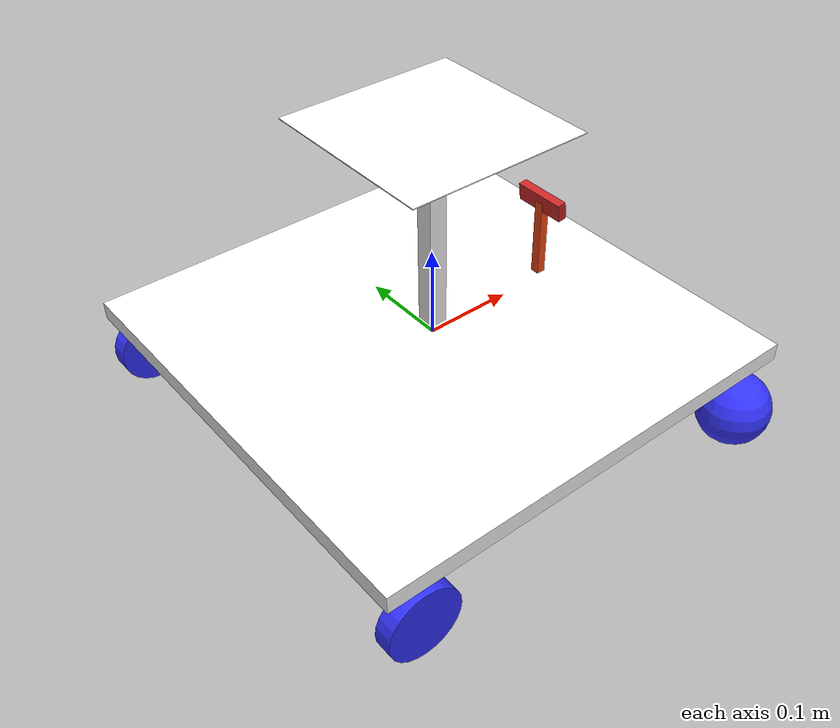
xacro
<?xml version="1.0"?>
<robot xmlns:xacro="http://www.ros.org/wiki/xacro"  name="robot">

    <xacro:include filename="robot_core.xacro" />

    <xacro:include filename="gazebo_control.xacro"/>

    <!--xacro:include filename="camera.xacro"/-->
    <xacro:include filename="depth_camera.xacro"/>

</robot>

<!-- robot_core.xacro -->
<robot xmlns:xacro="http://www.ros.org/wiki/xacro">
   <xacro:include filename="inertial_macros.xacro"/>

    <material name="white">
        <color rgba="1 1 1 1"/>
    </material>

    <material name="orange">
        <color rgba="1 0.3 0.1 1"/>
    </material>

    <material name="blue">
        <color rgba="0.2 0.2 1 1"/>
    </material>

    <material name="black">
        <color rgba="0 0 0 1"/>
    </material>

    <!-- BASE LINK -->

    <link name="base_link">

    </link>

    <!-- CHASSIS LINK -->

    <joint name="chassis_joint" type="fixed">
        <parent link="base_link"/>
        <child link="chassis"/>
        <origin xyz="-0.21 0 0"/>
    </joint>

    <link name="chassis">
        <visual>
            <origin xyz="0.21 0 0"/>
            <geometry>
                <box size="0.5 0.5 0.02"/>
            </geometry>
            <material name="white"/>
        </visual>
        <collision>
            <origin xyz="0.21 0 0"/>
            <geometry>
                <box size="0.5 0.5 0.02"/>
            </geometry>
        </collision>
        <xacro:inertial_box mass="0.5" x="0.5" y="0.5" z="0.02">
            <origin xyz="0.21 0 0.01" rpy="0 0 0"/>
        </xacro:inertial_box>
    </link>
    <gazebo reference="chassis">
       <material>Gazebo/White</material>
    </gazebo>

     <!-- ROBOT BASE LINK -->

    <joint name="base_joint" type="fixed">
        <parent link="base_link"/>
        <child link="base"/>
        <origin xyz="0 0 0.2"/>
    </joint>

    <link name="base">
        <visual>
            <origin xyz="0 0 -0.1"/>
            <geometry>
                <box size="0.02 0.02 0.2"/>
            </geometry>
            <material name="white"/>
        </visual>
        <collision>
            <origin xyz="0 0 -0.1"/>
            <geometry>
                <box size="0.02 0.02 0.2"/>
            </geometry>
        </collision>
        <xacro:inertial_box mass="0.1" x="0.02" y="0.02" z="0.2">
            <origin xyz="0 0 0.1" rpy="0 0 0"/>
        </xacro:inertial_box>
    </link>
    <gazebo reference="base">
       <material>Gazebo/White</material>
    </gazebo>

    <!-- ROBOT ROLL LINK -->

    <joint name="roll_joint" type="revolute">
        <parent link="base"/>
        <child link="roll"/>
        <origin xyz="0 0 0"/>
        <limit lower="-1" upper="1" effort="10" velocity="3"/>
        <axis xyz="1 0 0"/>
    </joint>

    <link name="roll">
        <visual>
            <origin xyz="0 0 0"/>
            <geometry>
                <box size="0 0 0"/>
            </geometry>
            <material name="white"/>
        </visual>
        <collision>
            <origin xyz="0 0 0"/>
            <geometry>
                <box size="0 0 0"/>
            </geometry>
        </collision>
        <xacro:inertial_box mass="0.09" x="0.05" y="0.02" z="0.02">
            <origin xyz="0.05 0 0" rpy="0 0 0"/>
        </xacro:inertial_box>
    </link>
    <gazebo reference="roll">
       <material>Gazebo/White</material>
    </gazebo>

    <!-- ROBOT PITCH LINK -->

    <joint name="pitch_joint" type="revolute">
        <parent link="roll"/>
        <child link="pitch"/>
        <origin xyz="0 0 0"/>
        <limit lower="-1" upper="1" effort="10" velocity="3"/>
        <axis xyz="0 1 0"/>
    </joint>

    <link name="pitch">
        <visual>
            <origin xyz="0 0 0"/>
            <geometry>
                <box size="0 0 0"/>
            </geometry>
            <material name="white"/>
        </visual>
        <collision>
            <origin xyz="0 0 0"/>
            <geometry>
                <box size="0 0 0"/>
            </geometry>
        </collision>
        <xacro:inertial_box mass="0.09" x="0.02" y="0.05" z="0.02">
            <origin xyz="0 0.05 0" rpy="0 0 0"/>
        </xacro:inertial_box>
    </link>
    <gazebo reference="pitch">
       <material>Gazebo/White</material>
    </gazebo>

        <!-- ROBOT Yaw LINK -->

    <joint name="yaw_joint" type="continuous">
        <parent link="pitch"/>
        <child link="yaw"/>
        <origin xyz="0 0 0.04"/>
        <axis xyz="0 0 1"/>
    </joint>

    <link name="yaw">
        <visual>
            <origin xyz="0 0 -0.02"/>
            <geometry>
                <cylinder radius="0.01" length="0.04"/>
            </geometry>
            <material name="orange"/>
        </visual>
        <collision>
            <origin xyz="0 0 -0.02"/>
            <geometry>
                <cylinder radius="0.01" length="0.04"/>
            </geometry>
        </collision>
        <xacro:inertial_cylinder mass="0.01" length="0.04" radius="0.01">
            <origin xyz="0 0 0" rpy="0 0 0"/>
        </xacro:inertial_cylinder>
    </link>
    <gazebo reference="yaw">
       <material>Gazebo/Orange</material>
    </gazebo>

         <!-- ROBOT PLATE LINK -->

    <joint name="plate_joint" type="fixed">
        <parent link="yaw"/>
        <child link="plate"/>
        <origin xyz="0 0 0"/>
    </joint>

    <link name="plate">
        <visual>
            <origin xyz="0 0 0"/>
            <geometry>
                <box size="0.2 0.2 0.001"/>
            </geometry>
            <material name="white"/>
        </visual>
        <collision>
            <origin xyz="0 0 0"/>
            <geometry>
                <box size="0.2 0.2 0.001"/>
            </geometry>
        </collision>
        <xacro:inertial_box mass="0.09" x="0.02" y="0.05" z="0.02">
            <origin xyz="0 0.05 0" rpy="0 0 0"/>
        </xacro:inertial_box>
    </link>
    <gazebo reference="plate">
       <material>Gazebo/White</material>
    </gazebo>

    <!-- CAMERA BASE LINK -->

    <joint name="camera_base_joint" type="fixed">
        <parent link="base_link"/>
        <child link="camera_base"/>
        <origin xyz="0.15 0 0.1"/>
    </joint>

    <link name="camera_base">
        <visual>
            <origin xyz="0 0 -0.05"/>
            <geometry>
                <box size="0.01 0.01 0.1"/>
            </geometry>
            <material name="orange"/>
        </visual>
        <collision>
            <origin xyz="0 0 -0.05"/>
            <geometry>
                <box size="0.01 0.01 0.1"/>
            </geometry>
        </collision>
        <xacro:inertial_box mass="0.05" x="0.02" y="0.02" z="0.1">
            <origin xyz="0 0 0.05" rpy="0 0 0"/>
        </xacro:inertial_box>
    </link>
    <gazebo reference="camera_base">
       <material>Gazebo/Orange</material>
    </gazebo>

     <!-- LEFT WHEEL LINK -->

    <joint name="left_wheel_joint" type="continuous">
        <parent link="chassis"/>
        <child link="left_wheel"/>
        <origin xyz="0 0.24 -0.06" rpy="-${pi/2} 0 0"/>
        <axis xyz="0 0 1"/>
    </joint>

    <link name="left_wheel">
        <visual>
            <geometry>
                <cylinder radius="0.04" length="0.02"/>
            </geometry>
            <material name="blue"/>
        </visual>
        <collision>
            <geometry>
                <cylinder radius="0.04" length="0.02"/>
            </geometry>
        </collision>
        <xacro:inertial_cylinder mass="0.1" length="0.02" radius="0.04">
            <origin xyz="0 0 0" rpy="0 0 0"/>
        </xacro:inertial_cylinder>

    </link>
    <gazebo reference="left_wheel">
       <material>Gazebo/Blue</material>
    </gazebo>

    <!-- RIGHT WHEEL LINK -->

    <joint name="right_wheel_joint" type="continuous">
        <parent link="chassis"/>
        <child link="right_wheel"/>
        <origin xyz="0 -0.24 -0.06" rpy="${pi/2} 0 0" />
        <axis xyz="0 0 -1"/>
    </joint>

    <link name="right_wheel">
        <visual>
            <geometry>
                <cylinder radius="0.04" length="0.02"/>
            </geometry>
            <material name="blue"/>
        </visual>
        <collision>
            <geometry>
                <cylinder radius="0.04" length="0.02"/>
            </geometry>
        </collision>
        <xacro:inertial_cylinder mass="0.1" length="0.02" radius="0.04">
            <origin xyz="0 0 0" rpy="0 0 0"/>
        </xacro:inertial_cylinder>

    </link>
    <gazebo reference="right_wheel">
       <material>Gazebo/Blue</material>
    </gazebo>

    <!-- FIRST CASTER WHEEL LINK -->

    <joint name="caster_wheel1_joint" type="fixed">
        <parent link="base_link"/>
        <child link="caster_wheel1"/>
        <origin xyz="0.21 -0.24 -0.06"/>
    </joint>

    <link name="caster_wheel1">
        <visual>
            <geometry>
                <sphere radius="0.04"/>
            </geometry>
            <material name="blue"/>
        </visual>
        <collision>
            <geometry>
                <sphere radius="0.04"/>
            </geometry>
        </collision>
        <xacro:inertial_sphere mass="0.1" radius="0.04">
            <origin xyz="0 0 0" rpy="0 0 0"/>
        </xacro:inertial_sphere>

    </link>
    <gazebo reference="caster_wheel1">
       <material>Gazebo/Blue</material>
       <mu1 value="0.001"/>
       <mu2 value="0.001"/>
    </gazebo>

    <!-- SECOND CASTER WHEEL LINK -->

    <joint name="caster_wheel2_joint" type="fixed">
        <parent link="base_link"/>
        <child link="caster_wheel2"/>
        <origin xyz="0.21 0.24 -0.06"/>
    </joint>

    <link name="caster_wheel2">
        <visual>
            <geometry>
                <sphere radius="0.04"/>
            </geometry>
            <material name="blue"/>
        </visual>
        <collision>
            <geometry>
                <sphere radius="0.04"/>
            </geometry>
        </collision>
        <xacro:inertial_sphere mass="0.1" radius="0.04">
            <origin xyz="0 0 0" rpy="0 0 0"/>
        </xacro:inertial_sphere>

    </link>
    <gazebo reference="caster_wheel2">
       <material>Gazebo/Blue</material>
       <mu1 value="0.001"/>
       <mu2 value="0.001"/>
    </gazebo>

</robot>

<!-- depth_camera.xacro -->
<robot xmlns:xacro="http://www.ros.org/wiki/xacro" >

    <joint name="camera_joint" type="fixed">
        <parent link="camera_base"/>
        <child link="camera_link"/>
        <origin xyz="0 0 0" rpy="0 ${-pi/24} 0"/>
    </joint>

    <link name="camera_link">
        <visual>
            <geometry>
                <box size="0.010 0.06 0.02"/>
            </geometry>
            <material name="red"/>
        </visual>
    </link>

    <gazebo reference="camera_link">
        <material>Gazebo/Red</material>

        <sensor name="camera" type="depth">
            <pose> 0 0 0 0 0 0 </pose>
            <visualize>true</visualize>
            <update_rate>10</update_rate>
            <camera>
                <horizontal_fov>1.089</horizontal_fov>
                <image>
                    <format>R8G8B8</format>
                    <width>1080</width>
                    <height>720</height>
                </image>
                <clip>
                    <near>0.05</near>
                    <far>5.0</far>
                </clip>
            </camera>
            <plugin name="camera_controller" filename="libgazebo_ros_camera.so">
                <frame_name>camera_link_optical</frame_name>
            </plugin>
        </sensor>
    </gazebo>

</robot>
